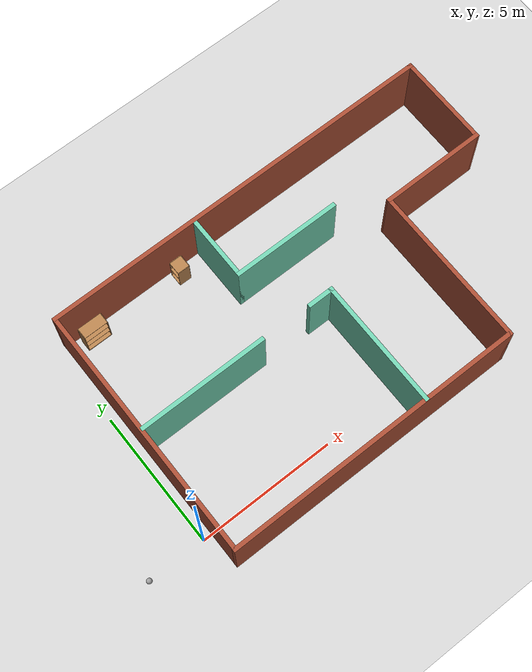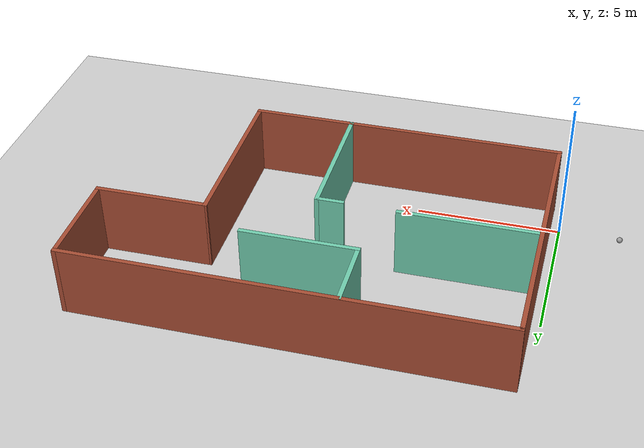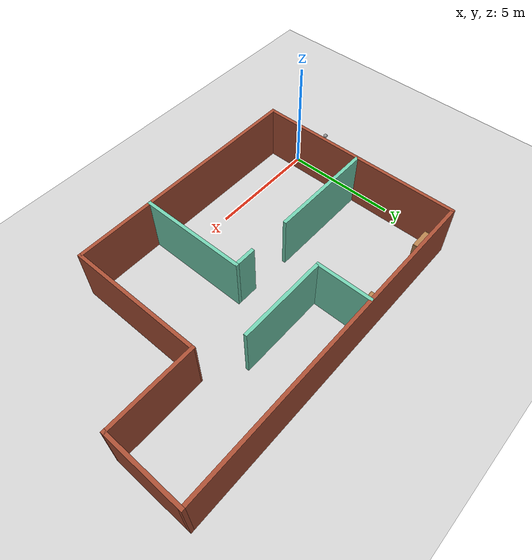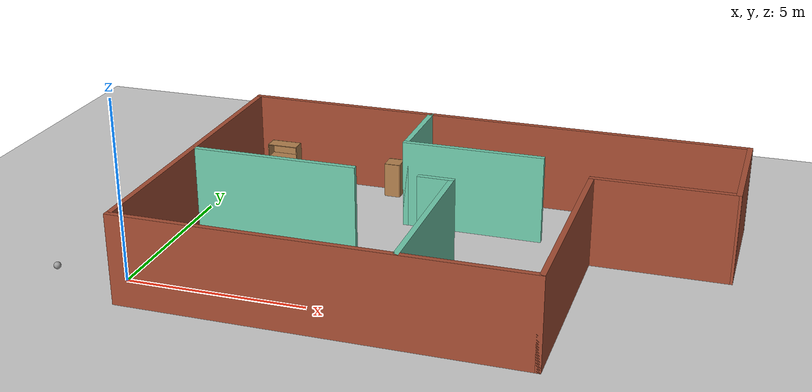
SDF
<sdf version="1.6">
 <world name="default">
  <plugin name="myplugin" filename="libmyplugin.so"/>
  <light name="sun" type="directional">
   <pose>0 0 10 0 -0 0</pose>
   <diffuse>0.8 0.8 0.8 1</diffuse>
   <specular>0.2 0.2 0.2 1</specular>
   <attenuation>
    <range>1000</range>
    <constant>0.9</constant>
    <linear>0.01</linear>
    <quadratic>0.001</quadratic>
   </attenuation>
   <direction>-0.5 0.1 -0.9</direction>
  </light>
  <model name="ground_plane">
   <static>1</static>
   <link name="link">
    <collision name="collision">
     <geometry><plane><normal>0 0 1</normal><size>100 100</size></plane></geometry>
     <surface>
      <contact><collide_bitmask>65535</collide_bitmask></contact>
      <friction><ode><mu>100</mu><mu2>50</mu2></ode></friction>
     </surface>
    </collision>
    <visual name="visual">
     <cast_shadows>0</cast_shadows>
     <geometry><plane><normal>0 0 1</normal><size>100 100</size></plane></geometry>
     <material>
      <script><uri>file://media/materials/scripts/gazebo.material</uri><name>Gazebo/Grey</name></script>
     </material>
    </visual>
   </link>
  </model>
  <gravity>0 0 -9.8</gravity>
  <magnetic_field>6e-06 2.3e-05 -4.2e-05</magnetic_field>
  <atmosphere type="adiabatic"/>
  <physics name="default_physics" default="0" type="ode">
   <max_step_size>0.001</max_step_size>
   <real_time_factor>1</real_time_factor>
   <real_time_update_rate>1000</real_time_update_rate>
  </physics>
  <scene><ambient>0.4 0.4 0.4 1</ambient><background>0.7 0.7 0.7 1</background><shadows>1</shadows></scene>
  <spherical_coordinates>
   <surface_model>EARTH_WGS84</surface_model>
   <latitude_deg>0</latitude_deg>
   <longitude_deg>0</longitude_deg>
   <elevation>0</elevation>
   <heading_deg>0</heading_deg>
  </spherical_coordinates>
  <model name="mybuilding">
   <pose>7.678 3.3713 0 0 -0 0</pose>
   <link name="Wall_0">
    <collision name="Wall_0_Collision">
     <geometry><box><size>11 0.15 2.5</size></box></geometry>
     <pose>0 0 1.25 0 -0 0</pose>
    </collision>
    <visual name="Wall_0_Visual">
     <pose>0 0 1.25 0 -0 0</pose>
     <geometry><box><size>11 0.15 2.5</size></box></geometry>
     <material>
      <script><uri>file://media/materials/scripts/gazebo.material</uri><name>Gazebo/Bricks</name></script>
      <ambient>1 1 1 1</ambient>
     </material>
     <meta><layer>0</layer></meta>
    </visual>
    <pose>-1.87735 -4.6087 0 0 -0 0</pose>
   </link>
   <link name="Wall_1">
    <collision name="Wall_1_Collision">
     <geometry><box><size>6 0.15 2.5</size></box></geometry>
     <pose>0 0 1.25 0 -0 0</pose>
    </collision>
    <visual name="Wall_1_Visual">
     <pose>0 0 1.25 0 -0 0</pose>
     <geometry><box><size>6 0.15 2.5</size></box></geometry>
     <material>
      <script><uri>file://media/materials/scripts/gazebo.material</uri><name>Gazebo/Bricks</name></script>
      <ambient>1 1 1 1</ambient>
     </material>
     <meta><layer>0</layer></meta>
    </visual>
    <pose>3.54765 -1.6837 0 0 -0 1.5708</pose>
   </link>
   <link name="Wall_10">
    <collision name="Wall_10_Collision">
     <geometry><box><size>4.75 0.15 2.5</size></box></geometry>
     <pose>0 0 1.25 0 -0 0</pose>
    </collision>
    <visual name="Wall_10_Visual">
     <pose>0 0 1.25 0 -0 0</pose>
     <geometry><box><size>4.75 0.15 2.5</size></box></geometry>
     <material>
      <script><uri>file://media/materials/scripts/gazebo.material</uri><name>Gazebo/Grey</name></script>
      <ambient>0.435294 0.796078 0.67451 1</ambient>
     </material>
     <meta><layer>0</layer></meta>
    </visual>
    <pose>0.115748 -2.29552 0 0 0 -1.5708</pose>
   </link>
   <link name="Wall_12">
    <collision name="Wall_12_Collision">
     <geometry><box><size>2.5 0.15 2.5</size></box></geometry>
     <pose>0 0 1.25 0 -0 0</pose>
    </collision>
    <visual name="Wall_12_Visual">
     <pose>0 0 1.25 0 -0 0</pose>
     <geometry><box><size>2.5 0.15 2.5</size></box></geometry>
     <material>
      <script><uri>file://media/materials/scripts/gazebo.material</uri><name>Gazebo/Grey</name></script>
      <ambient>0.435294 0.796078 0.67451 1</ambient>
     </material>
     <meta><layer>0</layer></meta>
    </visual>
    <pose>-1.84452 3.40934 0 0 0 -1.5708</pose>
   </link>
   <link name="Wall_14">
    <collision name="Wall_14_Collision">
     <geometry><box><size>4 0.15 2.5</size></box></geometry>
     <pose>0 0 1.25 0 -0 0</pose>
    </collision>
    <visual name="Wall_14_Visual">
     <pose>0 0 1.25 0 -0 0</pose>
     <geometry><box><size>4 0.15 2.5</size></box></geometry>
     <material>
      <script><uri>file://media/materials/scripts/gazebo.material</uri><name>Gazebo/Grey</name></script>
      <ambient>0.435294 0.796078 0.67451 1</ambient>
     </material>
     <meta><layer>0</layer></meta>
    </visual>
    <pose>0.080478 2.23434 0 0 -0 0</pose>
   </link>
   <link name="Wall_2">
    <collision name="Wall_2_Collision">
     <geometry><box><size>3.90439 0.15 2.5</size></box></geometry>
     <pose>0 0 1.25 0 -0 0</pose>
    </collision>
    <visual name="Wall_2_Visual">
     <pose>0 0 1.25 0 -0 0</pose>
     <geometry><box><size>3.90439 0.15 2.5</size></box></geometry>
     <material>
      <script><uri>file://media/materials/scripts/gazebo.material</uri><name>Gazebo/Bricks</name></script>
      <ambient>1 1 1 1</ambient>
     </material>
     <meta><layer>0</layer></meta>
    </visual>
    <pose>5.42483 1.25 0 0 -0 0.004632</pose>
   </link>
   <link name="Wall_3">
    <collision name="Wall_3_Collision">
     <geometry><box><size>3.5 0.15 2.5</size></box></geometry>
     <pose>0 0 1.25 0 -0 0</pose>
    </collision>
    <visual name="Wall_3_Visual">
     <pose>0 0 1.25 0 -0 0</pose>
     <geometry><box><size>3.5 0.15 2.5</size></box></geometry>
     <material>
      <script><uri>file://media/materials/scripts/gazebo.material</uri><name>Gazebo/Bricks</name></script>
      <ambient>1 1 1 1</ambient>
     </material>
     <meta><layer>0</layer></meta>
    </visual>
    <pose>7.302 2.9337 0 0 -0 1.5708</pose>
   </link>
   <link name="Wall_4">
    <collision name="Wall_4_Collision">
     <geometry><box><size>14.75 0.15 2.5</size></box></geometry>
     <pose>0 0 1.25 0 -0 0</pose>
    </collision>
    <visual name="Wall_4_Visual">
     <pose>0 0 1.25 0 -0 0</pose>
     <geometry><box><size>14.75 0.15 2.5</size></box></geometry>
     <material>
      <script><uri>file://media/materials/scripts/gazebo.material</uri><name>Gazebo/Bricks</name></script>
      <ambient>1 1 1 1</ambient>
     </material>
     <meta><layer>0</layer></meta>
    </visual>
    <pose>0.002001 4.6087 0 0 -0 3.14159</pose>
   </link>
   <link name="Wall_5">
    <collision name="Wall_5_Collision">
     <geometry><box><size>9.25 0.15 2.5</size></box></geometry>
     <pose>0 0 1.25 0 -0 0</pose>
    </collision>
    <visual name="Wall_5_Visual">
     <pose>0 0 1.25 0 -0 0</pose>
     <geometry><box><size>9.25 0.15 2.5</size></box></geometry>
     <material>
      <script><uri>file://media/materials/scripts/gazebo.material</uri><name>Gazebo/Bricks</name></script>
      <ambient>1 1 1 1</ambient>
     </material>
     <meta><layer>0</layer></meta>
    </visual>
    <pose>-7.298 0.058696 0 0 0 -1.5708</pose>
   </link>
   <link name="Wall_7">
    <collision name="Wall_7_Collision">
     <geometry><box><size>4.75 0.15 2.5</size></box></geometry>
     <pose>0 0 1.25 0 -0 0</pose>
    </collision>
    <visual name="Wall_7_Visual">
     <pose>0 0 1.25 0 -0 0</pose>
     <geometry><box><size>4.75 0.15 2.5</size></box></geometry>
     <material>
      <script><uri>file://media/materials/scripts/gazebo.material</uri><name>Gazebo/Grey</name></script>
      <ambient>0.435294 0.796078 0.67451 1</ambient>
     </material>
     <meta><layer>0</layer></meta>
    </visual>
    <pose>-4.93191 0.05074 0 0 -0 3.14159</pose>
   </link>
   <link name="Wall_9">
    <collision name="Wall_9_Collision">
     <geometry><box><size>1 0.15 2.5</size></box></geometry>
     <pose>0 0 1.25 0 -0 0</pose>
    </collision>
    <visual name="Wall_9_Visual">
     <pose>0 0 1.25 0 -0 0</pose>
     <geometry><box><size>1 0.15 2.5</size></box></geometry>
     <material>
      <script><uri>file://media/materials/scripts/gazebo.material</uri><name>Gazebo/Grey</name></script>
      <ambient>0.435294 0.796078 0.67451 1</ambient>
     </material>
     <meta><layer>0</layer></meta>
    </visual>
    <pose>-0.309253 0.004478 0 0 -0 0</pose>
   </link>
   <static>1</static>
  </model>
  <model name="bookshelf">
   <static>1</static>
   <link name="link">
    <inertial><mass>1</mass></inertial>
    <collision name="back">
     <pose>0 0.005 0.6 0 -0 0</pose>
     <geometry><box><size>0.9 0.01 1.2</size></box></geometry>
    </collision>
    <visual name="visual1">
     <pose>0 0.005 0.6 0 -0 0</pose>
     <geometry><box><size>0.9 0.01 1.2</size></box></geometry>
     <material>
      <script><uri>file://media/materials/scripts/gazebo.material</uri><name>Gazebo/Wood</name></script>
     </material>
    </visual>
    <collision name="left_side">
     <pose>0.45 -0.195 0.6 0 -0 0</pose>
     <geometry><box><size>0.02 0.4 1.2</size></box></geometry>
    </collision>
    <visual name="visual2">
     <pose>0.45 -0.195 0.6 0 -0 0</pose>
     <geometry><box><size>0.02 0.4 1.2</size></box></geometry>
     <material>
      <script><uri>file://media/materials/scripts/gazebo.material</uri><name>Gazebo/Wood</name></script>
     </material>
    </visual>
    <collision name="right_side">
     <pose>-0.45 -0.195 0.6 0 -0 0</pose>
     <geometry><box><size>0.02 0.4 1.2</size></box></geometry>
    </collision>
    <visual name="visual3">
     <pose>-0.45 -0.195 0.6 0 -0 0</pose>
     <geometry><box><size>0.02 0.4 1.2</size></box></geometry>
     <material>
      <script><uri>file://media/materials/scripts/gazebo.material</uri><name>Gazebo/Wood</name></script>
     </material>
    </visual>
    <collision name="bottom">
     <pose>0 -0.195 0.03 0 -0 0</pose>
     <geometry><box><size>0.88 0.4 0.06</size></box></geometry>
    </collision>
    <visual name="visual4">
     <pose>0 -0.195 0.03 0 -0 0</pose>
     <geometry><box><size>0.88 0.4 0.06</size></box></geometry>
     <material>
      <script><uri>file://media/materials/scripts/gazebo.material</uri><name>Gazebo/Wood</name></script>
     </material>
    </visual>
    <collision name="top">
     <pose>0 -0.195 1.19 0 -0 0</pose>
     <geometry><box><size>0.88 0.4 0.02</size></box></geometry>
    </collision>
    <visual name="visual5">
     <pose>0 -0.195 1.19 0 -0 0</pose>
     <geometry><box><size>0.88 0.4 0.02</size></box></geometry>
     <material>
      <script><uri>file://media/materials/scripts/gazebo.material</uri><name>Gazebo/Wood</name></script>
     </material>
    </visual>
    <collision name="low_shelf">
     <pose>0 -0.195 0.43 0 -0 0</pose>
     <geometry><box><size>0.88 0.4 0.02</size></box></geometry>
    </collision>
    <visual name="visual6">
     <pose>0 -0.195 0.43 0 -0 0</pose>
     <geometry><box><size>0.88 0.4 0.02</size></box></geometry>
     <material>
      <script><uri>file://media/materials/scripts/gazebo.material</uri><name>Gazebo/Wood</name></script>
     </material>
    </visual>
    <collision name="high_shelf">
     <pose>0 -0.195 0.8 0 -0 0</pose>
     <geometry><box><size>0.88 0.4 0.02</size></box></geometry>
    </collision>
    <visual name="visual7">
     <pose>0 -0.195 0.8 0 -0 0</pose>
     <geometry><box><size>0.88 0.4 0.02</size></box></geometry>
     <material>
      <script><uri>file://media/materials/scripts/gazebo.material</uri><name>Gazebo/Wood</name></script>
     </material>
    </visual>
   </link>
   <pose>1.31764 7.74224 0 0 -0 0</pose>
  </model>
  <model name="cabinet">
   <static>1</static>
   <link name="cabinet_bottom_plate">
    <inertial>
     <pose>0 0 -1 0 -0 0</pose>
     <inertia><ixx>2.05</ixx><ixy>0</ixy><ixz>0</ixz><iyy>2.05</iyy><iyz>0</iyz><izz>2.05</izz></inertia>
     <mass>25</mass>
    </inertial>
    <collision name="cabinet_bottom_plate_geom">
     <pose>0 0 0.01 0 -0 0</pose>
     <geometry><box><size>0.45 0.45 0.02</size></box></geometry>
    </collision>
    <visual name="cabinet_bottom_plate_geom_visual">
     <pose>0 0 0.01 0 -0 0</pose>
     <geometry><box><size>0.45 0.45 0.02</size></box></geometry>
     <material>
      <script><uri>file://media/materials/scripts/gazebo.material</uri><name>Gazebo/Wood</name></script>
     </material>
    </visual>
    <collision name="cabinet_bottom_plate_geom_cabinet_back_plate">
     <pose>0.235 0 0.51 0 -0 0</pose>
     <geometry><box><size>0.02 0.45 1.02</size></box></geometry>
    </collision>
    <visual name="cabinet_bottom_plate_geom_cabinet_back_plate_visual">
     <pose>0.235 0 0.51 0 -0 0</pose>
     <geometry><box><size>0.02 0.45 1.02</size></box></geometry>
     <material>
      <script><uri>file://media/materials/scripts/gazebo.material</uri><name>Gazebo/Wood</name></script>
     </material>
    </visual>
    <collision name="cabinet_bottom_plate_geom_cabinet_left_plate">
     <pose>0 0.235 0.51 0 -0 0</pose>
     <geometry><box><size>0.45 0.02 1.02</size></box></geometry>
    </collision>
    <visual name="cabinet_bottom_plate_geom_cabinet_left_plate_visual">
     <pose>0 0.235 0.51 0 -0 0</pose>
     <geometry><box><size>0.45 0.02 1.02</size></box></geometry>
     <material>
      <script><uri>file://media/materials/scripts/gazebo.material</uri><name>Gazebo/Wood</name></script>
     </material>
    </visual>
    <collision name="cabinet_bottom_plate_geom_cabinet_middle_plate">
     <pose>0 0 0.51 0 -0 0</pose>
     <geometry><box><size>0.45 0.45 0.02</size></box></geometry>
    </collision>
    <visual name="cabinet_bottom_plate_geom_cabinet_middle_plate_visual">
     <pose>0 0 0.51 0 -0 0</pose>
     <geometry><box><size>0.45 0.45 0.02</size></box></geometry>
     <material>
      <script><uri>file://media/materials/scripts/gazebo.material</uri><name>Gazebo/Wood</name></script>
     </material>
    </visual>
    <collision name="cabinet_bottom_plate_geom_cabinet_right_plate">
     <pose>0 -0.235 0.51 0 -0 0</pose>
     <geometry><box><size>0.45 0.02 1.02</size></box></geometry>
    </collision>
    <visual name="cabinet_bottom_plate_geom_cabinet_right_plate_visual">
     <pose>0 -0.235 0.51 0 -0 0</pose>
     <geometry><box><size>0.45 0.02 1.02</size></box></geometry>
     <material>
      <script><uri>file://media/materials/scripts/gazebo.material</uri><name>Gazebo/Wood</name></script>
     </material>
    </visual>
    <collision name="cabinet_bottom_plate_geom_cabinet_top_plate">
     <pose>0 0 1.01 0 -0 0</pose>
     <geometry><box><size>0.45 0.45 0.02</size></box></geometry>
    </collision>
    <visual name="cabinet_bottom_plate_geom_cabinet_top_plate_visual">
     <pose>0 0 1.01 0 -0 0</pose>
     <geometry><box><size>0.45 0.45 0.02</size></box></geometry>
     <material>
      <script><uri>file://media/materials/scripts/gazebo.material</uri><name>Gazebo/Wood</name></script>
     </material>
    </visual>
   </link>
   <pose>4.82474 7.58379 0 0 -0 0</pose>
  </model>
  <model name="my_ball">
   <link name="link_0">
    <inertial>
     <mass>1</mass>
     <inertia><ixx>0.1</ixx><ixy>0</ixy><ixz>0</ixz><iyy>0.1</iyy><iyz>0</iyz><izz>0.1</izz></inertia>
    </inertial>
    <visual name="visual">
     <geometry><sphere><radius>0.1</radius></sphere></geometry>
     <material>
      <lighting>1</lighting>
      <script><uri>file://media/materials/scripts/gazebo.material</uri><name>Gazebo/Grey</name></script>
      <shader type="pixel"><normal_map>__default__</normal_map></shader>
      <ambient>1 1 1 1</ambient>
      <diffuse>1 1 1 1</diffuse>
      <specular>1 1 1 1</specular>
      <emissive>0 0 0 1</emissive>
     </material>
    </visual>
    <collision name="collision">
     <geometry><sphere><radius>0.1</radius></sphere></geometry>
     <surface>
      <friction>
       <ode><mu>1</mu><mu2>1</mu2><fdir1>0 0 0</fdir1><slip1>0</slip1><slip2>0</slip2></ode>
       <torsional>
        <coefficient>1</coefficient>
        <patch_radius>0</patch_radius>
        <surface_radius>0</surface_radius>
        <use_patch_radius>1</use_patch_radius>
        <ode><slip>0</slip></ode>
       </torsional>
      </friction>
      <bounce><restitution_coefficient>0</restitution_coefficient><threshold>1e+06</threshold></bounce>
      <contact>
       <collide_without_contact>0</collide_without_contact>
       <collide_without_contact_bitmask>1</collide_without_contact_bitmask>
       <collide_bitmask>1</collide_bitmask>
       <ode>
        <soft_cfm>0</soft_cfm>
        <soft_erp>0.2</soft_erp>
        <kp>1e+13</kp>
        <kd>1</kd>
        <max_vel>0.01</max_vel>
        <min_depth>0</min_depth>
       </ode>
       <bullet>
        <split_impulse>1</split_impulse>
        <split_impulse_penetration_threshold>-0.01</split_impulse_penetration_threshold>
        <soft_cfm>0</soft_cfm>
        <soft_erp>0.2</soft_erp>
        <kp>1e+13</kp>
        <kd>1</kd>
       </bullet>
      </contact>
     </surface>
    </collision>
   </link>
   <static>0</static>
   <pose>-2.09192 0.040059 0.1 0 -0 0</pose>
  </model>
 </world>
</sdf>
